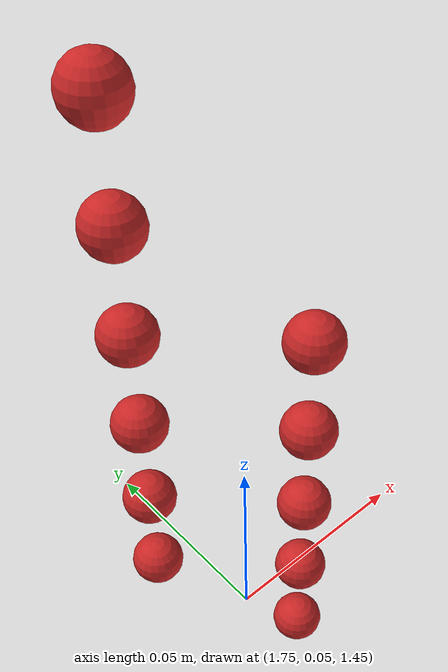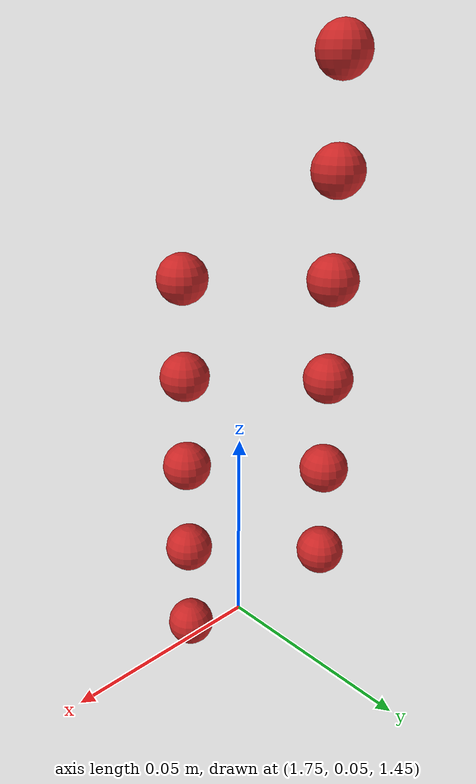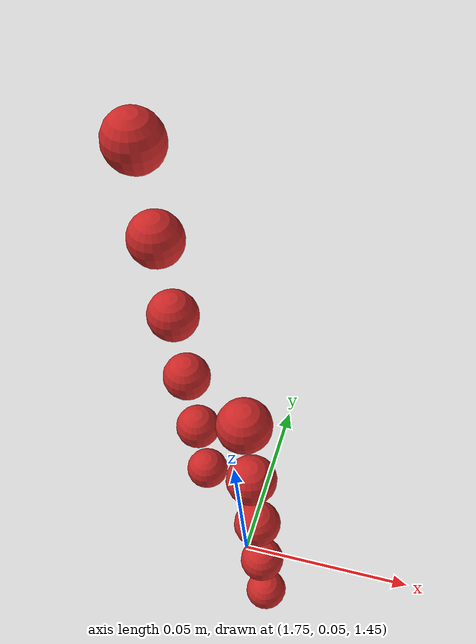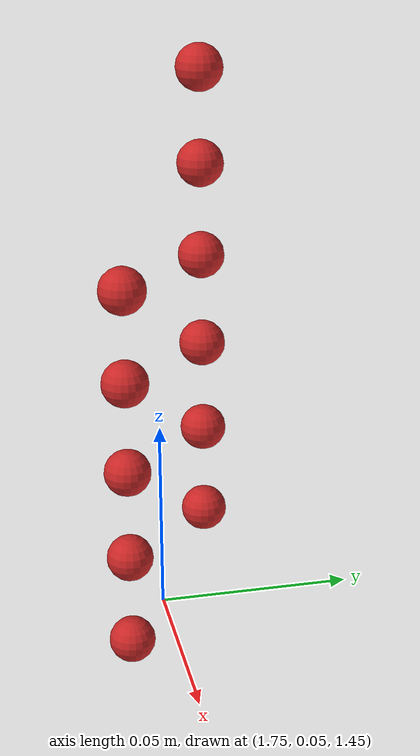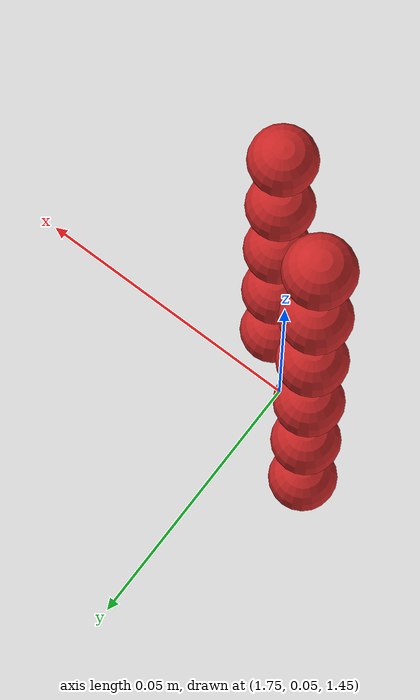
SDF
<sdf version="1.4">
 <world name="default">
  <model name="ground_plane">
   <static>1</static>
   <link name="link">
    <collision name="collision">
     <geometry><plane><normal>0 0 1</normal><size>100 100</size></plane></geometry>
     <surface><friction><ode><mu>100</mu><mu2>50</mu2></ode></friction></surface>
    </collision>
    <visual name="visual">
     <cast_shadows>0</cast_shadows>
     <geometry><plane><normal>0 0 1</normal><size>100 100</size></plane></geometry>
     <material>
      <script><uri>file://media/materials/scripts/gazebo.material</uri><name>Gazebo/Grey</name></script>
     </material>
    </visual>
    <velocity_decay><linear>0</linear><angular>0</angular></velocity_decay>
   </link>
  </model>
  <model name="sphere1">
   <pose>0.879343 0.020112 0.722288 0 0 0</pose>
   <link name="link">
    <pose>0.879343 0.020112 0.722288 0 0 0</pose>
    <inertial>
     <mass>0.001</mass>
     <inertia>
      <ixx>0.004</ixx>
      <ixy>0.000000</ixy>
      <ixz>0.000000</ixz>
      <iyy>0.004</iyy>
      <iyz>0.000000</iyz>
      <izz>0.004</izz>
     </inertia>
    </inertial>
    <collision name="collision">
     <surface>
      <contact><ode><kp>10000000000.000000</kp><kd>1</kd></ode></contact>
      <friction><ode><mu>0.01</mu><mu2>0.01</mu2></ode></friction>
     </surface>
     <geometry><sphere><radius>0.006</radius></sphere></geometry>
    </collision>
    <visual name="visual">
     <geometry><sphere><radius>0.006</radius></sphere></geometry>
     <material>
      <script><uri>file://media/materials/scripts/gazebo.material</uri><name>Gazebo/Red</name></script>
     </material>
    </visual>
   </link>
  </model>
  <model name="sphere10">
   <pose>0.879343 0.020112 0.734288 0 0 0</pose>
   <link name="link">
    <pose>0.879343 0.020112 0.734288 0 0 0</pose>
    <inertial>
     <mass>0.001</mass>
     <inertia>
      <ixx>0.004</ixx>
      <ixy>0.000000</ixy>
      <ixz>0.000000</ixz>
      <iyy>0.004</iyy>
      <iyz>0.000000</iyz>
      <izz>0.004</izz>
     </inertia>
    </inertial>
    <collision name="collision">
     <surface>
      <contact><ode><kp>10000000000.000000</kp><kd>1</kd></ode></contact>
      <friction><ode><mu>0.01</mu><mu2>0.01</mu2></ode></friction>
     </surface>
     <geometry><sphere><radius>0.006</radius></sphere></geometry>
    </collision>
    <visual name="visual">
     <geometry><sphere><radius>0.006</radius></sphere></geometry>
     <material>
      <script><uri>file://media/materials/scripts/gazebo.material</uri><name>Gazebo/Red</name></script>
     </material>
    </visual>
   </link>
  </model>
  <model name="sphere12">
   <pose>0.867343 0.032112 0.734288 0 0 0</pose>
   <link name="link">
    <pose>0.867343 0.032112 0.734288 0 0 0</pose>
    <inertial>
     <mass>0.001</mass>
     <inertia>
      <ixx>0.004</ixx>
      <ixy>0.000000</ixy>
      <ixz>0.000000</ixz>
      <iyy>0.004</iyy>
      <iyz>0.000000</iyz>
      <izz>0.004</izz>
     </inertia>
    </inertial>
    <collision name="collision">
     <surface>
      <contact><ode><kp>10000000000.000000</kp><kd>1</kd></ode></contact>
      <friction><ode><mu>0.01</mu><mu2>0.01</mu2></ode></friction>
     </surface>
     <geometry><sphere><radius>0.006</radius></sphere></geometry>
    </collision>
    <visual name="visual">
     <geometry><sphere><radius>0.006</radius></sphere></geometry>
     <material>
      <script><uri>file://media/materials/scripts/gazebo.material</uri><name>Gazebo/Red</name></script>
     </material>
    </visual>
   </link>
  </model>
  <model name="sphere19">
   <pose>0.879343 0.020112 0.746288 0 0 0</pose>
   <link name="link">
    <pose>0.879343 0.020112 0.746288 0 0 0</pose>
    <inertial>
     <mass>0.001</mass>
     <inertia>
      <ixx>0.004</ixx>
      <ixy>0.000000</ixy>
      <ixz>0.000000</ixz>
      <iyy>0.004</iyy>
      <iyz>0.000000</iyz>
      <izz>0.004</izz>
     </inertia>
    </inertial>
    <collision name="collision">
     <surface>
      <contact><ode><kp>10000000000.000000</kp><kd>1</kd></ode></contact>
      <friction><ode><mu>0.01</mu><mu2>0.01</mu2></ode></friction>
     </surface>
     <geometry><sphere><radius>0.006</radius></sphere></geometry>
    </collision>
    <visual name="visual">
     <geometry><sphere><radius>0.006</radius></sphere></geometry>
     <material>
      <script><uri>file://media/materials/scripts/gazebo.material</uri><name>Gazebo/Red</name></script>
     </material>
    </visual>
   </link>
  </model>
  <model name="sphere21">
   <pose>0.867343 0.032112 0.746288 0 0 0</pose>
   <link name="link">
    <pose>0.867343 0.032112 0.746288 0 0 0</pose>
    <inertial>
     <mass>0.001</mass>
     <inertia>
      <ixx>0.004</ixx>
      <ixy>0.000000</ixy>
      <ixz>0.000000</ixz>
      <iyy>0.004</iyy>
      <iyz>0.000000</iyz>
      <izz>0.004</izz>
     </inertia>
    </inertial>
    <collision name="collision">
     <surface>
      <contact><ode><kp>10000000000.000000</kp><kd>1</kd></ode></contact>
      <friction><ode><mu>0.01</mu><mu2>0.01</mu2></ode></friction>
     </surface>
     <geometry><sphere><radius>0.006</radius></sphere></geometry>
    </collision>
    <visual name="visual">
     <geometry><sphere><radius>0.006</radius></sphere></geometry>
     <material>
      <script><uri>file://media/materials/scripts/gazebo.material</uri><name>Gazebo/Red</name></script>
     </material>
    </visual>
   </link>
  </model>
  <model name="sphere28">
   <pose>0.879343 0.020112 0.758288 0 0 0</pose>
   <link name="link">
    <pose>0.879343 0.020112 0.758288 0 0 0</pose>
    <inertial>
     <mass>0.001</mass>
     <inertia>
      <ixx>0.004</ixx>
      <ixy>0.000000</ixy>
      <ixz>0.000000</ixz>
      <iyy>0.004</iyy>
      <iyz>0.000000</iyz>
      <izz>0.004</izz>
     </inertia>
    </inertial>
    <collision name="collision">
     <surface>
      <contact><ode><kp>10000000000.000000</kp><kd>1</kd></ode></contact>
      <friction><ode><mu>0.01</mu><mu2>0.01</mu2></ode></friction>
     </surface>
     <geometry><sphere><radius>0.006</radius></sphere></geometry>
    </collision>
    <visual name="visual">
     <geometry><sphere><radius>0.006</radius></sphere></geometry>
     <material>
      <script><uri>file://media/materials/scripts/gazebo.material</uri><name>Gazebo/Red</name></script>
     </material>
    </visual>
   </link>
  </model>
  <model name="sphere30">
   <pose>0.867343 0.032112 0.758288 0 0 0</pose>
   <link name="link">
    <pose>0.867343 0.032112 0.758288 0 0 0</pose>
    <inertial>
     <mass>0.001</mass>
     <inertia>
      <ixx>0.004</ixx>
      <ixy>0.000000</ixy>
      <ixz>0.000000</ixz>
      <iyy>0.004</iyy>
      <iyz>0.000000</iyz>
      <izz>0.004</izz>
     </inertia>
    </inertial>
    <collision name="collision">
     <surface>
      <contact><ode><kp>10000000000.000000</kp><kd>1</kd></ode></contact>
      <friction><ode><mu>0.01</mu><mu2>0.01</mu2></ode></friction>
     </surface>
     <geometry><sphere><radius>0.006</radius></sphere></geometry>
    </collision>
    <visual name="visual">
     <geometry><sphere><radius>0.006</radius></sphere></geometry>
     <material>
      <script><uri>file://media/materials/scripts/gazebo.material</uri><name>Gazebo/Red</name></script>
     </material>
    </visual>
   </link>
  </model>
  <model name="sphere37">
   <pose>0.879343 0.020112 0.770288 0 0 0</pose>
   <link name="link">
    <pose>0.879343 0.020112 0.770288 0 0 0</pose>
    <inertial>
     <mass>0.001</mass>
     <inertia>
      <ixx>0.004</ixx>
      <ixy>0.000000</ixy>
      <ixz>0.000000</ixz>
      <iyy>0.004</iyy>
      <iyz>0.000000</iyz>
      <izz>0.004</izz>
     </inertia>
    </inertial>
    <collision name="collision">
     <surface>
      <contact><ode><kp>10000000000.000000</kp><kd>1</kd></ode></contact>
      <friction><ode><mu>0.01</mu><mu2>0.01</mu2></ode></friction>
     </surface>
     <geometry><sphere><radius>0.006</radius></sphere></geometry>
    </collision>
    <visual name="visual">
     <geometry><sphere><radius>0.006</radius></sphere></geometry>
     <material>
      <script><uri>file://media/materials/scripts/gazebo.material</uri><name>Gazebo/Red</name></script>
     </material>
    </visual>
   </link>
  </model>
  <model name="sphere39">
   <pose>0.867343 0.032112 0.770288 0 0 0</pose>
   <link name="link">
    <pose>0.867343 0.032112 0.770288 0 0 0</pose>
    <inertial>
     <mass>0.001</mass>
     <inertia>
      <ixx>0.004</ixx>
      <ixy>0.000000</ixy>
      <ixz>0.000000</ixz>
      <iyy>0.004</iyy>
      <iyz>0.000000</iyz>
      <izz>0.004</izz>
     </inertia>
    </inertial>
    <collision name="collision">
     <surface>
      <contact><ode><kp>10000000000.000000</kp><kd>1</kd></ode></contact>
      <friction><ode><mu>0.01</mu><mu2>0.01</mu2></ode></friction>
     </surface>
     <geometry><sphere><radius>0.006</radius></sphere></geometry>
    </collision>
    <visual name="visual">
     <geometry><sphere><radius>0.006</radius></sphere></geometry>
     <material>
      <script><uri>file://media/materials/scripts/gazebo.material</uri><name>Gazebo/Red</name></script>
     </material>
    </visual>
   </link>
  </model>
  <model name="sphere48">
   <pose>0.867343 0.032112 0.782288 0 0 0</pose>
   <link name="link">
    <pose>0.867343 0.032112 0.782288 0 0 0</pose>
    <inertial>
     <mass>0.001</mass>
     <inertia>
      <ixx>0.004</ixx>
      <ixy>0.000000</ixy>
      <ixz>0.000000</ixz>
      <iyy>0.004</iyy>
      <iyz>0.000000</iyz>
      <izz>0.004</izz>
     </inertia>
    </inertial>
    <collision name="collision">
     <surface>
      <contact><ode><kp>10000000000.000000</kp><kd>1</kd></ode></contact>
      <friction><ode><mu>0.01</mu><mu2>0.01</mu2></ode></friction>
     </surface>
     <geometry><sphere><radius>0.006</radius></sphere></geometry>
    </collision>
    <visual name="visual">
     <geometry><sphere><radius>0.006</radius></sphere></geometry>
     <material>
      <script><uri>file://media/materials/scripts/gazebo.material</uri><name>Gazebo/Red</name></script>
     </material>
    </visual>
   </link>
  </model>
  <model name="sphere57">
   <pose>0.867343 0.032112 0.794288 0 0 0</pose>
   <link name="link">
    <pose>0.867343 0.032112 0.794288 0 0 0</pose>
    <inertial>
     <mass>0.001</mass>
     <inertia>
      <ixx>0.004</ixx>
      <ixy>0.000000</ixy>
      <ixz>0.000000</ixz>
      <iyy>0.004</iyy>
      <iyz>0.000000</iyz>
      <izz>0.004</izz>
     </inertia>
    </inertial>
    <collision name="collision">
     <surface>
      <contact><ode><kp>10000000000.000000</kp><kd>1</kd></ode></contact>
      <friction><ode><mu>0.01</mu><mu2>0.01</mu2></ode></friction>
     </surface>
     <geometry><sphere><radius>0.006</radius></sphere></geometry>
    </collision>
    <visual name="visual">
     <geometry><sphere><radius>0.006</radius></sphere></geometry>
     <material>
      <script><uri>file://media/materials/scripts/gazebo.material</uri><name>Gazebo/Red</name></script>
     </material>
    </visual>
   </link>
  </model>
 </world>
</sdf>
